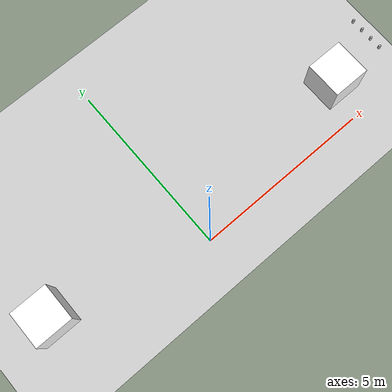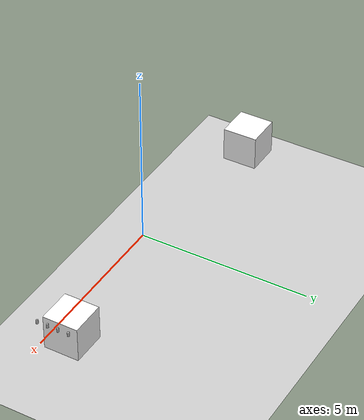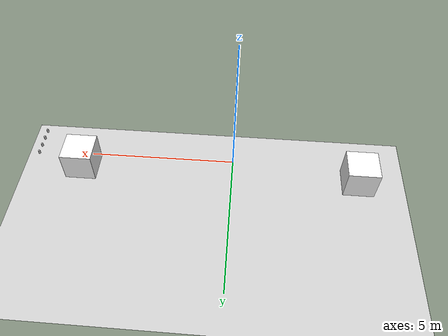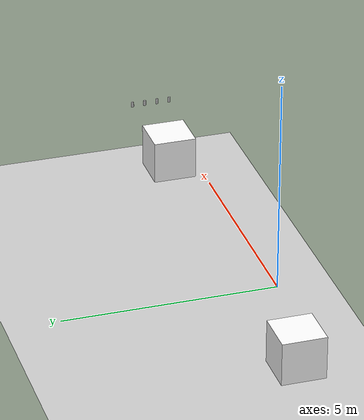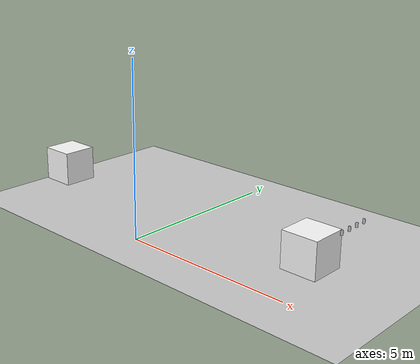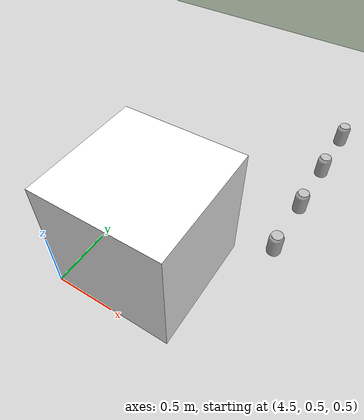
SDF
<sdf version="1.6">
 <world name="default">
  <model name="ground_plane">
   <static>1</static>
   <link name="link">
    <collision name="collision">
     <geometry><plane><normal>0 0 1</normal><size>100 100</size></plane></geometry>
     <surface><friction><ode><mu>100</mu><mu2>50</mu2></ode></friction></surface>
    </collision>
    <visual name="visual">
     <cast_shadows>0</cast_shadows>
     <geometry><plane><normal>0 0 1</normal><size>100 100</size></plane></geometry>
     <material>
      <script><uri>file://media/materials/scripts/gazebo.material</uri><name>Gazebo/Grey</name></script>
     </material>
    </visual>
   </link>
  </model>
  <light name="sun" type="directional">
   <pose>0 0 10 0 -0 0</pose>
   <diffuse>0.8 0.8 0.8 1</diffuse>
   <specular>0.1 0.1 0.1 1</specular>
   <attenuation>
    <range>1000</range>
    <constant>0.9</constant>
    <linear>0.01</linear>
    <quadratic>0.001</quadratic>
   </attenuation>
   <direction>-0.5 0.5 -1</direction>
  </light>
  <gravity>0 0 -9.8</gravity>
  <magnetic_field>6e-06 2.3e-05 -4.2e-05</magnetic_field>
  <atmosphere type="adiabatic"/>
  <physics name="default_physics" default="0" type="ode">
   <max_step_size>0.001</max_step_size>
   <real_time_factor>1</real_time_factor>
   <real_time_update_rate>1000</real_time_update_rate>
  </physics>
  <scene><ambient>0.4 0.4 0.4 1</ambient><background>0.7 0.7 0.7 1</background><shadows>1</shadows></scene>
  <spherical_coordinates>
   <surface_model>EARTH_WGS84</surface_model>
   <latitude_deg>0</latitude_deg>
   <longitude_deg>0</longitude_deg>
   <elevation>0</elevation>
   <heading_deg>0</heading_deg>
  </spherical_coordinates>
  <model name="coke_can_clone_clone_0_0">
   <link name="link">
    <inertial>
     <mass>0.01</mass>
     <inertia><ixx>0.00058</ixx><ixy>0</ixy><ixz>0</ixz><iyy>0.00058</iyy><iyz>0</iyz><izz>0.00019</izz></inertia>
    </inertial>
    <visual name="visual">
     <pose>0 0 -0.46 0 -0 0</pose>
     <geometry><mesh><uri>model://coke_can/meshes/coke_can.dae</uri><scale>1 1 1</scale></mesh></geometry>
     <material><shader type="vertex"><normal_map>__default__</normal_map></shader></material>
    </visual>
    <collision name="collision">
     <pose>0 0 -0.46 0 -0 0</pose>
     <geometry>
      <mesh><uri>/home/kist/.gazebo/models/coke_can/meshes/coke_can.dae</uri><scale>1 1 1</scale></mesh>
     </geometry>
     <surface>
      <friction>
       <ode><mu>1</mu><mu2>1</mu2><fdir1>0 0 0</fdir1><slip1>0</slip1><slip2>0</slip2></ode>
       <torsional>
        <coefficient>1</coefficient>
        <patch_radius>0</patch_radius>
        <surface_radius>0</surface_radius>
        <use_patch_radius>1</use_patch_radius>
        <ode><slip>0</slip></ode>
       </torsional>
      </friction>
      <bounce><restitution_coefficient>0</restitution_coefficient><threshold>1e+06</threshold></bounce>
      <contact>
       <collide_without_contact>0</collide_without_contact>
       <collide_without_contact_bitmask>1</collide_without_contact_bitmask>
       <collide_bitmask>1</collide_bitmask>
       <ode>
        <soft_cfm>0</soft_cfm>
        <soft_erp>0.2</soft_erp>
        <kp>1e+13</kp>
        <kd>1</kd>
        <max_vel>0.01</max_vel>
        <min_depth>0</min_depth>
       </ode>
       <bullet>
        <split_impulse>1</split_impulse>
        <split_impulse_penetration_threshold>-0.01</split_impulse_penetration_threshold>
        <soft_cfm>0</soft_cfm>
        <soft_erp>0.2</soft_erp>
        <kp>1e+13</kp>
        <kd>1</kd>
       </bullet>
      </contact>
     </surface>
    </collision>
   </link>
   <static>0</static>
   <pose>5.9998 1.59974 2.05153 0 -0 0</pose>
  </model>
  <model name="coke_can_clone_clone_0_0_clone">
   <link name="link">
    <inertial>
     <mass>0.01</mass>
     <inertia><ixx>0.00058</ixx><ixy>0</ixy><ixz>0</ixz><iyy>0.00058</iyy><iyz>0</iyz><izz>0.00019</izz></inertia>
    </inertial>
    <visual name="visual">
     <pose>0 0 -0.46 0 -0 0</pose>
     <geometry><mesh><uri>model://coke_can/meshes/coke_can.dae</uri><scale>1 1 1</scale></mesh></geometry>
     <material><shader type="vertex"><normal_map>__default__</normal_map></shader></material>
    </visual>
    <collision name="collision">
     <pose>0 0 -0.46 0 -0 0</pose>
     <geometry>
      <mesh><uri>/home/kist/.gazebo/models/coke_can/meshes/coke_can.dae</uri><scale>1 1 1</scale></mesh>
     </geometry>
     <surface>
      <friction>
       <ode><mu>1</mu><mu2>1</mu2><fdir1>0 0 0</fdir1><slip1>0</slip1><slip2>0</slip2></ode>
       <torsional>
        <coefficient>1</coefficient>
        <patch_radius>0</patch_radius>
        <surface_radius>0</surface_radius>
        <use_patch_radius>1</use_patch_radius>
        <ode><slip>0</slip></ode>
       </torsional>
      </friction>
      <bounce><restitution_coefficient>0</restitution_coefficient><threshold>1e+06</threshold></bounce>
      <contact>
       <collide_without_contact>0</collide_without_contact>
       <collide_without_contact_bitmask>1</collide_without_contact_bitmask>
       <collide_bitmask>1</collide_bitmask>
       <ode>
        <soft_cfm>0</soft_cfm>
        <soft_erp>0.2</soft_erp>
        <kp>1e+13</kp>
        <kd>1</kd>
        <max_vel>0.01</max_vel>
        <min_depth>0</min_depth>
       </ode>
       <bullet>
        <split_impulse>1</split_impulse>
        <split_impulse_penetration_threshold>-0.01</split_impulse_penetration_threshold>
        <soft_cfm>0</soft_cfm>
        <soft_erp>0.2</soft_erp>
        <kp>1e+13</kp>
        <kd>1</kd>
       </bullet>
      </contact>
     </surface>
    </collision>
   </link>
   <static>0</static>
   <pose>6 1.3 2.05 0 -0 0</pose>
  </model>
  <model name="coke_can_clone_clone_0_0_clone_clone">
   <link name="link">
    <inertial>
     <mass>0.01</mass>
     <inertia><ixx>0.00058</ixx><ixy>0</ixy><ixz>0</ixz><iyy>0.00058</iyy><iyz>0</iyz><izz>0.00019</izz></inertia>
    </inertial>
    <visual name="visual">
     <pose>0 0 -0.46 0 -0 0</pose>
     <geometry><mesh><uri>model://coke_can/meshes/coke_can.dae</uri><scale>1 1 1</scale></mesh></geometry>
     <material><shader type="vertex"><normal_map>__default__</normal_map></shader></material>
    </visual>
    <collision name="collision">
     <pose>0 0 -0.46 0 -0 0</pose>
     <geometry>
      <mesh><uri>/home/kist/.gazebo/models/coke_can/meshes/coke_can.dae</uri><scale>1 1 1</scale></mesh>
     </geometry>
     <surface>
      <friction>
       <ode><mu>1</mu><mu2>1</mu2><fdir1>0 0 0</fdir1><slip1>0</slip1><slip2>0</slip2></ode>
       <torsional>
        <coefficient>1</coefficient>
        <patch_radius>0</patch_radius>
        <surface_radius>0</surface_radius>
        <use_patch_radius>1</use_patch_radius>
        <ode><slip>0</slip></ode>
       </torsional>
      </friction>
      <bounce><restitution_coefficient>0</restitution_coefficient><threshold>1e+06</threshold></bounce>
      <contact>
       <collide_without_contact>0</collide_without_contact>
       <collide_without_contact_bitmask>1</collide_without_contact_bitmask>
       <collide_bitmask>1</collide_bitmask>
       <ode>
        <soft_cfm>0</soft_cfm>
        <soft_erp>0.2</soft_erp>
        <kp>1e+13</kp>
        <kd>1</kd>
        <max_vel>0.01</max_vel>
        <min_depth>0</min_depth>
       </ode>
       <bullet>
        <split_impulse>1</split_impulse>
        <split_impulse_penetration_threshold>-0.01</split_impulse_penetration_threshold>
        <soft_cfm>0</soft_cfm>
        <soft_erp>0.2</soft_erp>
        <kp>1e+13</kp>
        <kd>1</kd>
       </bullet>
      </contact>
     </surface>
    </collision>
   </link>
   <static>0</static>
   <pose>6 0.7 2.05 0 -0 0</pose>
  </model>
  <model name="coke_can_clone_clone_0_0_clone_clone_clone">
   <link name="link">
    <inertial>
     <mass>0.01</mass>
     <inertia><ixx>0.00058</ixx><ixy>0</ixy><ixz>0</ixz><iyy>0.00058</iyy><iyz>0</iyz><izz>0.00019</izz></inertia>
    </inertial>
    <visual name="visual">
     <pose>0 0 -0.46 0 -0 0</pose>
     <geometry><mesh><uri>model://coke_can/meshes/coke_can.dae</uri><scale>1 1 1</scale></mesh></geometry>
     <material><shader type="vertex"><normal_map>__default__</normal_map></shader></material>
    </visual>
    <collision name="collision">
     <pose>0 0 -0.46 0 -0 0</pose>
     <geometry>
      <mesh><uri>/home/kist/.gazebo/models/coke_can/meshes/coke_can.dae</uri><scale>1 1 1</scale></mesh>
     </geometry>
     <surface>
      <friction>
       <ode><mu>1</mu><mu2>1</mu2><fdir1>0 0 0</fdir1><slip1>0</slip1><slip2>0</slip2></ode>
       <torsional>
        <coefficient>1</coefficient>
        <patch_radius>0</patch_radius>
        <surface_radius>0</surface_radius>
        <use_patch_radius>1</use_patch_radius>
        <ode><slip>0</slip></ode>
       </torsional>
      </friction>
      <bounce><restitution_coefficient>0</restitution_coefficient><threshold>1e+06</threshold></bounce>
      <contact>
       <collide_without_contact>0</collide_without_contact>
       <collide_without_contact_bitmask>1</collide_without_contact_bitmask>
       <collide_bitmask>1</collide_bitmask>
       <ode>
        <soft_cfm>0</soft_cfm>
        <soft_erp>0.2</soft_erp>
        <kp>1e+13</kp>
        <kd>1</kd>
        <max_vel>0.01</max_vel>
        <min_depth>0</min_depth>
       </ode>
       <bullet>
        <split_impulse>1</split_impulse>
        <split_impulse_penetration_threshold>-0.01</split_impulse_penetration_threshold>
        <soft_cfm>0</soft_cfm>
        <soft_erp>0.2</soft_erp>
        <kp>1e+13</kp>
        <kd>1</kd>
       </bullet>
      </contact>
     </surface>
    </collision>
   </link>
   <static>0</static>
   <pose>6 1 2.05 0 -0 0</pose>
  </model>
  <model name="brick_box_3x1x3_0_0_0_0_0">
   <link name="chassis">
    <pose>0 0 2.01567 0 -0 0</pose>
    <inertial>
     <mass>1</mass>
     <inertia><ixx>1</ixx><ixy>0</ixy><ixz>0</ixz><iyy>1</iyy><iyz>0</iyz><izz>1</izz></inertia>
    </inertial>
    <visual name="visual">
     <geometry><mesh><uri>model://brick_box_3x1x3/meshes/simple_box.dae</uri><scale>1 1 1</scale></mesh></geometry>
     <material>
      <script>
       <uri>model://brick_box_3x1x3/materials/scripts</uri>
       <uri>model://brick_box_3x1x3/materials/textures</uri>
       <name>BrickBox/Diffuse</name>
      </script>
      <ambient>1 1 1 1</ambient>
      <diffuse>1 1 1 1</diffuse>
      <specular>0 0 0 1</specular>
      <emissive>0 0 0 1</emissive>
      <shader type="vertex"><normal_map>__default__</normal_map></shader>
     </material>
    </visual>
    <collision name="collision">
     <geometry><box><size>5 2 2</size></box></geometry>
     <surface>
      <friction>
       <ode><mu>1</mu><mu2>1</mu2><fdir1>0 0 0</fdir1><slip1>0</slip1><slip2>0</slip2></ode>
       <torsional>
        <coefficient>1</coefficient>
        <patch_radius>0</patch_radius>
        <surface_radius>0</surface_radius>
        <use_patch_radius>1</use_patch_radius>
        <ode><slip>0</slip></ode>
       </torsional>
      </friction>
      <bounce><restitution_coefficient>0</restitution_coefficient><threshold>1e+06</threshold></bounce>
      <contact>
       <collide_without_contact>0</collide_without_contact>
       <collide_without_contact_bitmask>1</collide_without_contact_bitmask>
       <collide_bitmask>1</collide_bitmask>
       <ode>
        <soft_cfm>0</soft_cfm>
        <soft_erp>0.2</soft_erp>
        <kp>1e+13</kp>
        <kd>1</kd>
        <max_vel>0.01</max_vel>
        <min_depth>0</min_depth>
       </ode>
       <bullet>
        <split_impulse>1</split_impulse>
        <split_impulse_penetration_threshold>-0.01</split_impulse_penetration_threshold>
        <soft_cfm>0</soft_cfm>
        <soft_erp>0.2</soft_erp>
        <kp>1e+13</kp>
        <kd>1</kd>
       </bullet>
      </contact>
     </surface>
    </collision>
   </link>
   <static>1</static>
   <pose>5 1 -1 0 -0 0</pose>
  </model>
  <model name="brick_box_3x1x3_0_0_clone_0_0_0">
   <link name="chassis">
    <pose>0 0 2.01567 0 -0 0</pose>
    <inertial>
     <mass>1</mass>
     <inertia><ixx>1</ixx><ixy>0</ixy><ixz>0</ixz><iyy>1</iyy><iyz>0</iyz><izz>1</izz></inertia>
    </inertial>
    <visual name="visual">
     <geometry><mesh><uri>model://brick_box_3x1x3/meshes/simple_box.dae</uri><scale>1 1 1</scale></mesh></geometry>
     <material>
      <script>
       <uri>model://brick_box_3x1x3/materials/scripts</uri>
       <uri>model://brick_box_3x1x3/materials/textures</uri>
       <name>BrickBox/Diffuse</name>
      </script>
      <ambient>1 1 1 1</ambient>
      <diffuse>1 1 1 1</diffuse>
      <specular>0 0 0 1</specular>
      <emissive>0 0 0 1</emissive>
      <shader type="vertex"><normal_map>__default__</normal_map></shader>
     </material>
    </visual>
    <collision name="collision">
     <geometry><box><size>5 2 2</size></box></geometry>
     <surface>
      <friction>
       <ode><mu>1</mu><mu2>1</mu2><fdir1>0 0 0</fdir1><slip1>0</slip1><slip2>0</slip2></ode>
       <torsional>
        <coefficient>1</coefficient>
        <patch_radius>0</patch_radius>
        <surface_radius>0</surface_radius>
        <use_patch_radius>1</use_patch_radius>
        <ode><slip>0</slip></ode>
       </torsional>
      </friction>
      <bounce><restitution_coefficient>0</restitution_coefficient><threshold>1e+06</threshold></bounce>
      <contact>
       <collide_without_contact>0</collide_without_contact>
       <collide_without_contact_bitmask>1</collide_without_contact_bitmask>
       <collide_bitmask>1</collide_bitmask>
       <ode>
        <soft_cfm>0</soft_cfm>
        <soft_erp>0.2</soft_erp>
        <kp>1e+13</kp>
        <kd>1</kd>
        <max_vel>0.01</max_vel>
        <min_depth>0</min_depth>
       </ode>
       <bullet>
        <split_impulse>1</split_impulse>
        <split_impulse_penetration_threshold>-0.01</split_impulse_penetration_threshold>
        <soft_cfm>0</soft_cfm>
        <soft_erp>0.2</soft_erp>
        <kp>1e+13</kp>
        <kd>1</kd>
       </bullet>
      </contact>
     </surface>
    </collision>
   </link>
   <static>1</static>
   <pose>-4.1 1 -1 0 -0 0</pose>
  </model>
 </world>
</sdf>
